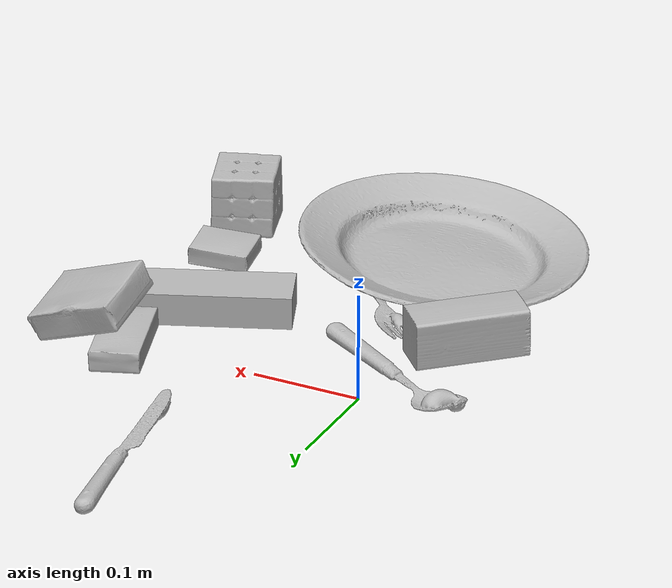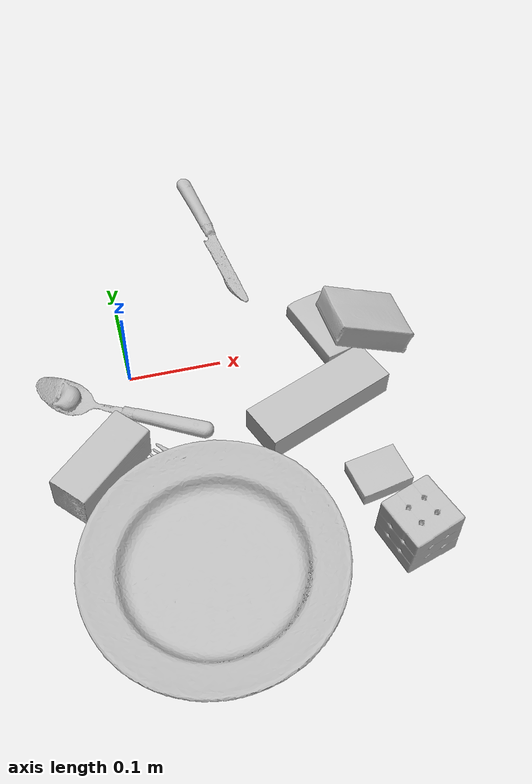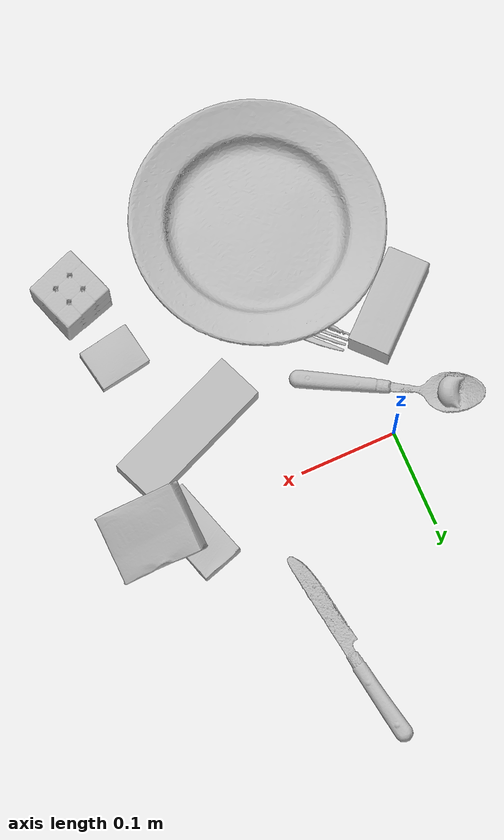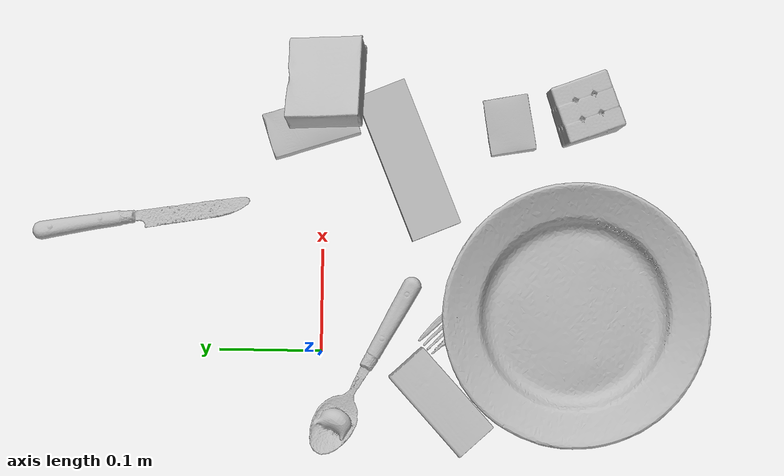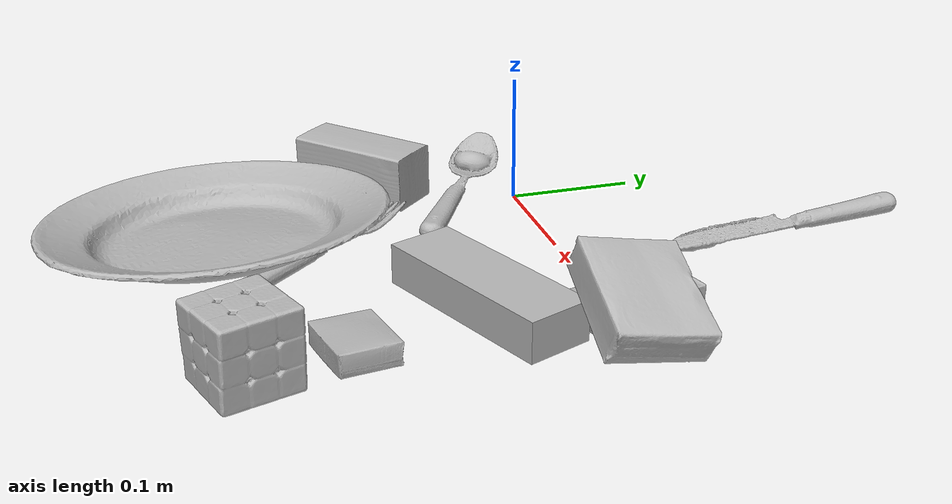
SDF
<sdf version="1.4">
  <world name="default">
    <light name="light1" type="point">
      <pose>0 0 1 0 0 0</pose>
      <diffuse>3 3 3 1</diffuse>
      <specular>3 3 3 1</specular>
    </light>
    <light name="light2" type="point">
      <pose>0 0.5 2 0 0 0</pose>
      <diffuse>1 1 1 1</diffuse>
      <specular>1 1 1 1</specular>
    </light>
    <light name="light3" type="point">
      <pose>0 0.5 2 0 0 0</pose>
      <diffuse>3 3 3 1</diffuse>
      <specular>3 3 3 1</specular>
    </light>
    <scene>
      <ambient>0.7 0.7 0.7</ambient>
    </scene>
    <model name="box11">
      <link name="link_box11">
        <collision name="default">
          <geometry>
            <mesh>
              <uri>model://jenga/collision_meshes/collision.obj</uri>
              <scale>1.0 1.0 1.0</scale>
            </mesh>
          </geometry>
          <surface>
            <friction>
              <ode>
                <mu>0.5</mu>
                <mu2>0.5</mu2>
              </ode>
            </friction>
          <contact>
        <ode>
            <max_vel>0</max_vel>
            <min_depth>0.0001</min_depth>
            <kp>1e8</kp>
        </ode>
    </contact></surface>
        </collision>
        <visual name="default">
          <geometry>
            <mesh>
              <uri>model://jenga/visual_meshes/visual.dae</uri>
              <scale>1.0 1.0 1.0</scale>
            </mesh>
          </geometry>
        </visual>
        <inertial>
          <mass>0.24099597334861755</mass>
          <pose>-2.502855807051674e-07 -0.00010250010382151231 -4.0923401684267446e-05 0.0 -7.34215461761844e-07 0.0</pose>
          <inertia>
            <ixx>6.668944e-05</ixx>
            <iyy>0.0004518858</iyy>
            <izz>0.00048242652</izz>
            <ixy>0</ixy>
            <ixz>0</ixz>
            <iyz>0</iyz>
          </inertia>
        </inertial>
      </link>
      <pose>0.18731793761253357 -0.08243115991353989 0.014999991282820702 1.6453642316344017e-06 4.1573680122121004e-07 -2.7539927807499613</pose>
    </model>
    <model name="box12">
      <link name="link_box12">
        <collision name="default">
          <geometry>
            <mesh>
              <uri>model://wood_block/collision_meshes/collision.obj</uri>
              <scale>0.5 0.5 0.5</scale>
            </mesh>
          </geometry>
          <surface>
            <friction>
              <ode>
                <mu>0.5</mu>
                <mu2>0.5</mu2>
              </ode>
            </friction>
          <contact>
        <ode>
            <max_vel>0</max_vel>
            <min_depth>0.0001</min_depth>
            <kp>1e8</kp>
        </ode>
    </contact></surface>
        </collision>
        <visual name="default">
          <geometry>
            <mesh>
              <uri>model://wood_block/visual_meshes/visual.dae</uri>
              <scale>0.5 0.5 0.5</scale>
            </mesh>
          </geometry>
        </visual>
        <inertial>
          <mass>0.14152581989765167</mass>
          <pose>-2.9066577553749084e-06 -0.000285404734313488 0.00013204291462898254 -0.05220812938960465 -0.005192695343712196 -0.006861377662393293</pose>
          <inertia>
            <ixx>4.7345737e-05</ixx>
            <iyy>0.0001495652</iyy>
            <izz>0.00014900575</izz>
            <ixy>0</ixy>
            <ixz>0</ixz>
            <iyz>0</iyz>
          </inertia>
        </inertial>
      </link>
      <pose>-0.046571265906095505 -0.1166907474398613 0.022527480497956276 -0.01584543657321172 -0.00040201185308814073 -2.4021823855479862</pose>
    </model>
    <model name="box13">
      <link name="link_box13">
        <collision name="default">
          <geometry>
            <mesh>
              <uri>model://sugar_box/collision_meshes/collision.obj</uri>
              <scale>0.5 0.5 0.5</scale>
            </mesh>
          </geometry>
          <surface>
            <friction>
              <ode>
                <mu>0.5</mu>
                <mu2>0.5</mu2>
              </ode>
            </friction>
          <contact>
        <ode>
            <max_vel>0</max_vel>
            <min_depth>0.0001</min_depth>
            <kp>1e8</kp>
        </ode>
    </contact></surface>
        </collision>
        <visual name="default">
          <geometry>
            <mesh>
              <uri>model://sugar_box/visual_meshes/visual.dae</uri>
              <scale>0.5 0.5 0.5</scale>
            </mesh>
          </geometry>
        </visual>
        <inertial>
          <mass>0.08336380124092102</mass>
          <pose>0.0005171863595023751 1.924554817378521e-05 -0.00018182402709499002 -0.0004046263001201691 0.0010506636386254094 0.0026153790217303746</pose>
          <inertia>
            <ixx>1.7364619e-05</ixx>
            <iyy>5.612603e-05</iyy>
            <izz>6.718955e-05</izz>
            <ixy>0</ixy>
            <ixz>0</ixz>
            <iyz>0</iyz>
          </inertia>
        </inertial>
      </link>
      <pose>0.2218540608882904 0.012321051210165024 0.011448469944298267 -0.025124120115928086 -0.01247399796223989 -1.2706480276298258</pose>
    </model>
    <model name="box21">
      <link name="link_box21">
        <collision name="default">
          <geometry>
            <mesh>
              <uri>model://pudding_box/collision_meshes/collision.obj</uri>
              <scale>0.5 0.5 0.5</scale>
            </mesh>
          </geometry>
          <surface>
            <friction>
              <ode>
                <mu>0.5</mu>
                <mu2>0.5</mu2>
              </ode>
            </friction>
          <contact>
        <ode>
            <max_vel>0</max_vel>
            <min_depth>0.0001</min_depth>
            <kp>1e8</kp>
        </ode>
    </contact></surface>
        </collision>
        <visual name="default">
          <geometry>
            <mesh>
              <uri>model://pudding_box/visual_meshes/visual.dae</uri>
              <scale>0.5 0.5 0.5</scale>
            </mesh>
          </geometry>
        </visual>
        <inertial>
          <mass>0.025778822600841522</mass>
          <pose>0.00024474109522998333 0.00040339428232982755 -0.0002594413817860186 0.005213100851918505 -0.006603799640504885 0.02007982516037135</pose>
          <inertia>
            <ixx>7.285408e-06</ixx>
            <iyy>4.901674e-06</iyy>
            <izz>1.07588085e-05</izz>
            <ixy>0</ixy>
            <ixz>0</ixz>
            <iyz>0</iyz>
          </inertia>
        </inertial>
      </link>
      <pose>0.2233928143978119 -0.1809256374835968 0.00986290443688631 0.02234846893700299 -0.011391787530992981 -1.4009359215487114</pose>
    </model>
    <model name="box22">
      <link name="link_box22">
        <collision name="default">
          <geometry>
            <mesh>
              <uri>model://rubiks_cube/collision_meshes/collision.obj</uri>
              <scale>1.0 1.0 1.0</scale>
            </mesh>
          </geometry>
          <surface>
            <friction>
              <ode>
                <mu>0.5</mu>
                <mu2>0.5</mu2>
              </ode>
            </friction>
          <contact>
        <ode>
            <max_vel>0</max_vel>
            <min_depth>0.0001</min_depth>
            <kp>1e8</kp>
        </ode>
    </contact></surface>
        </collision>
        <visual name="default">
          <geometry>
            <mesh>
              <uri>model://rubiks_cube/visual_meshes/visual.dae</uri>
              <scale>1.0 1.0 1.0</scale>
            </mesh>
          </geometry>
        </visual>
        <inertial>
          <mass>0.22147096693515778</mass>
          <pose>2.6721041649580002e-05 5.256967051536776e-05 -7.264316082000732e-06 -0.05467273282600652 -0.09814100107642566 -0.034457018786431724</pose>
          <inertia>
            <ixx>0.00012237758</ixx>
            <iyy>0.00012180688</iyy>
            <izz>0.00012339167</izz>
            <ixy>0</ixy>
            <ixz>0</ixz>
            <iyz>0</iyz>
          </inertia>
        </inertial>
      </link>
      <pose>0.23857566714286804 -0.2530807852745056 0.02867896482348442 -4.116847352191674e-06 -1.6568911895965072e-06 0.3429727732353599</pose>
    </model>
    <model name="box23">
      <link name="link_box23">
        <collision name="default">
          <geometry>
            <mesh>
              <uri>model://gelatin_box/collision_meshes/collision.obj</uri>
              <scale>1.0 1.0 1.0</scale>
            </mesh>
          </geometry>
          <surface>
            <friction>
              <ode>
                <mu>0.5</mu>
                <mu2>0.5</mu2>
              </ode>
            </friction>
          <contact>
        <ode>
            <max_vel>0</max_vel>
            <min_depth>0.0001</min_depth>
            <kp>1e8</kp>
        </ode>
    </contact></surface>
        </collision>
        <visual name="default">
          <geometry>
            <mesh>
              <uri>model://gelatin_box/visual_meshes/visual.dae</uri>
              <scale>1.0 1.0 1.0</scale>
            </mesh>
          </geometry>
        </visual>
        <inertial>
          <mass>0.20053431391716003</mass>
          <pose>0.0004319618456065655 0.00011156871914863586 -0.00036403207923285663 -0.001050372330881514 -0.004755818219920532 0.016440563197859918</pose>
          <inertia>
            <ixx>0.00014156084</ixx>
            <iyy>0.00010111618</iyy>
            <izz>0.00021548718</izz>
            <ixy>0</ixy>
            <ixz>0</ixz>
            <iyz>0</iyz>
          </inertia>
        </inertial>
      </link>
      <pose>0.2619723379611969 -0.0016968483105301857 0.03369138017296791 0.3696541523473433 0.17899604053270143 1.5861873369895754</pose>
    </model>
    <model name="plate1">
      <link name="link_plate1">
        <collision name="default">
          <geometry>
            <mesh>
              <uri>model://plate/collision_meshes/collision.obj</uri>
              <scale>1.0 1.0 1.0</scale>
            </mesh>
          </geometry>
          <surface>
            <friction>
              <ode>
                <mu>0.5</mu>
                <mu2>0.5</mu2>
              </ode>
            </friction>
          <contact>
        <ode>
            <max_vel>0</max_vel>
            <min_depth>0.0001</min_depth>
            <kp>1e8</kp>
        </ode>
    </contact></surface>
        </collision>
        <visual name="default">
          <geometry>
            <mesh>
              <uri>model://plate/visual_meshes/visual.dae</uri>
              <scale>1.0 1.0 1.0</scale>
            </mesh>
          </geometry>
        </visual>
        <inertial>
          <mass>0.1705944687128067</mass>
          <pose>-0.0006044638575986028 0.0002782570372801274 -0.0010561983799561858 0.002218806973518856 -0.003225464946202784 0.4526031622217862</pose>
          <inertia>
            <ixx>0.0007980444</ixx>
            <iyy>0.0007904114</iyy>
            <izz>0.0015608557</izz>
            <ixy>0</ixy>
            <ixz>0</ixz>
            <iyz>0</iyz>
          </inertia>
        </inertial>
      </link>
      <pose>0.038860466331243515 -0.2467471957206726 0.020524434745311737 0.021321938655234563 0.09572818257219752 -2.530664395613133</pose>
    </model>
    <model name="silverware1">
      <link name="link_silverware1">
        <collision name="default">
          <geometry>
            <mesh>
              <uri>model://fork/collision_meshes/collision.obj</uri>
              <scale>1.0 1.0 1.0</scale>
            </mesh>
          </geometry>
          <surface>
            <friction>
              <ode>
                <mu>0.5</mu>
                <mu2>0.5</mu2>
              </ode>
            </friction>
          <contact>
        <ode>
            <max_vel>0</max_vel>
            <min_depth>0.0001</min_depth>
            <kp>1e8</kp>
        </ode>
    </contact></surface>
        </collision>
        <visual name="default">
          <geometry>
            <mesh>
              <uri>model://fork/visual_meshes/visual.dae</uri>
              <scale>1.0 1.0 1.0</scale>
            </mesh>
          </geometry>
        </visual>
        <inertial>
          <mass>0.02693658135831356</mass>
          <pose>-0.02957003191113472 0.00046588244731538 0.0003218860365450382 -0.013551533598057301 -0.010977833518912038 0.014453896181446386</pose>
          <inertia>
            <ixx>9.442797e-07</ixx>
            <iyy>7.032368e-05</iyy>
            <izz>7.074603e-05</izz>
            <ixy>0</ixy>
            <ixz>0</ixz>
            <iyz>0</iyz>
          </inertia>
        </inertial>
      </link>
      <pose>0.07029834389686584 -0.17481867969036102 0.005770024377852678 -0.13369745754378295 0.02584024579369811 2.2746752195319537</pose>
    </model>
    <model name="silverware2">
      <link name="link_silverware2">
        <collision name="default">
          <geometry>
            <mesh>
              <uri>model://knife/collision_meshes/collision.obj</uri>
              <scale>1.0 1.0 1.0</scale>
            </mesh>
          </geometry>
          <surface>
            <friction>
              <ode>
                <mu>0.5</mu>
                <mu2>0.5</mu2>
              </ode>
            </friction>
          <contact>
        <ode>
            <max_vel>0</max_vel>
            <min_depth>0.0001</min_depth>
            <kp>1e8</kp>
        </ode>
    </contact></surface>
        </collision>
        <visual name="default">
          <geometry>
            <mesh>
              <uri>model://knife/visual_meshes/visual.dae</uri>
              <scale>1.0 1.0 1.0</scale>
            </mesh>
          </geometry>
        </visual>
        <inertial>
          <mass>0.029087698087096214</mass>
          <pose>-0.023785242810845375 0.0015275123296305537 5.0620237743714824e-05 0.07305335090844457 0.017248415402536993 -0.007409830271159857</pose>
          <inertia>
            <ixx>8.256269e-07</ixx>
            <iyy>0.00011175022</iyy>
            <izz>0.00011201614</izz>
            <ixy>0</ixy>
            <ixz>0</ixz>
            <iyz>0</iyz>
          </inertia>
        </inertial>
      </link>
      <pose>0.1282031387090683 0.1778416931629181 0.00813681073486805 -0.28174873529379163 -0.008871608760597786 -1.4269722977137294</pose>
    </model>
    <model name="silverware3">
      <link name="link_silverware3">
        <collision name="default">
          <geometry>
            <mesh>
              <uri>model://spoon/collision_meshes/collision.obj</uri>
              <scale>1.0 1.0 1.0</scale>
            </mesh>
          </geometry>
          <surface>
            <friction>
              <ode>
                <mu>0.5</mu>
                <mu2>0.5</mu2>
              </ode>
            </friction>
          <contact>
        <ode>
            <max_vel>0</max_vel>
            <min_depth>0.0001</min_depth>
            <kp>1e8</kp>
        </ode>
    </contact></surface>
        </collision>
        <visual name="default">
          <geometry>
            <mesh>
              <uri>model://spoon/visual_meshes/visual.dae</uri>
              <scale>1.0 1.0 1.0</scale>
            </mesh>
          </geometry>
        </visual>
        <inertial>
          <mass>0.04163059964776039</mass>
          <pose>-0.005526324268430471 -0.001603418029844761 -0.0007271656068041921 0.035215733596471024 -0.03906582179646946 0.006150610371924991</pose>
          <inertia>
            <ixx>2.3155617e-06</ixx>
            <iyy>0.00015840305</iyy>
            <izz>0.00015954502</izz>
            <ixy>0</ixy>
            <ixz>0</ixz>
            <iyz>0</iyz>
          </inertia>
        </inertial>
      </link>
      <pose>-0.014623605646193027 -0.04589442163705826 0.008385268040001392 0.006729041245834824 0.02689300884597661 2.6332046005075376</pose>
    </model>
  <physics type="ode">
      <max_contacts>50</max_contacts>
      <ode>
        <solver>
          <type>quick</type>
          <iters>75</iters>
        </solver>
        <constraints>
          <contact_max_correcting_vel>0</contact_max_correcting_vel>
          <contact_surface_layer>0</contact_surface_layer>
        </constraints>
      </ode>
    </physics></world>
</sdf>
